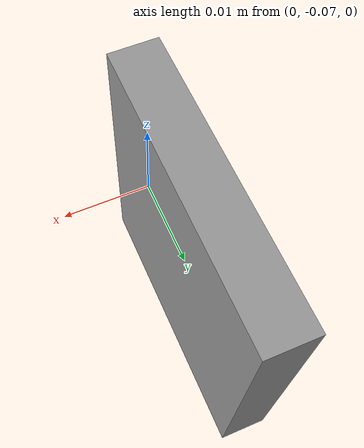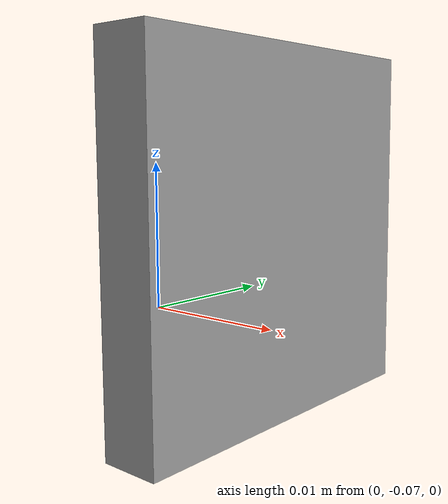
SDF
<?xml version='1.0'?>

<sdf version='1.6'>
  <model name='camera'>
    <link name='link_camera'>
      <inertial>
        <mass>0.0052875</mass>
        <inertia>
          <ixx>4.1e-07</ixx>
          <ixy>0</ixy>
          <ixz>0</ixz>
          <iyy>7.9e-07</iyy>
          <iyz>0</iyz>
          <izz>4.1e-07</izz>
        </inertia>
        <!-- centered around rgb-->
        <pose frame="">0 -0.058 0.004 3.14159 0 0</pose>
        <!-- centered -->
      </inertial>
      <pose frame="">0 -0.058 0.004 3.14159 0 0</pose>
      <gravity>1</gravity>
      <self_collide>0</self_collide>
      <kinematic>0</kinematic>
      <enable_wind>0</enable_wind>
      <visual name='visual'>
        <pose frame=''>0 0 0 0 -0 0</pose>
        <geometry>
          <box>
            <size>0.005 0.03 0.03</size>
          </box>
        </geometry>
        <material>
          <lighting>1</lighting>
          <script>
            <uri>file://media/materials/scripts/gazebo.material</uri>
            <name>Gazebo/Grey</name>
          </script>
          <shader type='vertex'>
            <normal_map>__default__</normal_map>
          </shader>
          <ambient>0.3 0.3 0.3 1</ambient>
          <diffuse>0.7 0.7 0.7 1</diffuse>
          <specular>0.01 0.01 0.01 1</specular>
          <emissive>0 0 0 1</emissive>
        </material>
        <transparency>0</transparency>
        <cast_shadows>1</cast_shadows>
      </visual>
      <collision name='collision'>
        <laser_retro>0</laser_retro>
        <max_contacts>10</max_contacts>
        <pose frame=''>0 0 0 0 -0 0</pose>
        <geometry>
          <box>
            <size>0.005 0.03 0.03</size>
          </box>
        </geometry>
        <surface>
          <friction>
            <ode>
              <mu>1</mu>
              <mu2>1</mu2>
              <fdir1>0 0 0</fdir1>
              <slip1>0</slip1>
              <slip2>0</slip2>
            </ode>
            <torsional>
              <coefficient>1</coefficient>
              <patch_radius>0</patch_radius>
              <surface_radius>0</surface_radius>
              <use_patch_radius>1</use_patch_radius>
              <ode>
                <slip>0</slip>
              </ode>
            </torsional>
          </friction>
          <bounce>
            <restitution_coefficient>0</restitution_coefficient>
            <threshold>1e+06</threshold>
          </bounce>
          <contact>
            <collide_without_contact>0</collide_without_contact>
            <collide_without_contact_bitmask>1</collide_without_contact_bitmask>
            <collide_bitmask>1</collide_bitmask>
            <ode>
              <soft_cfm>0</soft_cfm>
              <soft_erp>0.2</soft_erp>
              <kp>1e+13</kp>
              <kd>1</kd>
              <max_vel>0.01</max_vel>
              <min_depth>0</min_depth>
            </ode>
            <bullet>
              <split_impulse>1</split_impulse>
              <split_impulse_penetration_threshold>-0.01</split_impulse_penetration_threshold>
              <soft_cfm>0</soft_cfm>
              <soft_erp>0.2</soft_erp>
              <kp>1e+13</kp>
              <kd>1</kd>
            </bullet>
          </contact>
        </surface>
      </collision>

    <sensor name="imu_sensor" type="imu">
        <always_on>true</always_on>
        <update_rate>200</update_rate>
        <visualize>true</visualize>
        <topic>__default_topic__</topic>
        <plugin filename="libgazebo_ros_imu_sensor.so" name="imu_plugin">
          <robotNamespace/>
          <topicName>/camera/imu</topicName>
          <bodyName>imu_link</bodyName>
          <updateRateHZ>200.0</updateRateHZ>
          <gaussianNoise>0.0</gaussianNoise>
          <xyzOffset>0 0 0</xyzOffset>
          <rpyOffset>0 0 0</rpyOffset>
          <frameName>realsense</frameName>
          <initialOrientationAsReference>false</initialOrientationAsReference>
        </plugin>
      </sensor>
      <sensor name="color" type="camera">
        <pose frame="">0 -0.046 0.004 3.14159 0 0</pose>
        <camera name="__default__">
          <horizontal_fov>0.96976</horizontal_fov>
          <image>
            <width>640</width>
            <height>480</height>
            <format>RGB_INT8</format>
          </image>
          <clip>
            <near>0.1</near>
            <far>100</far>
          </clip>
          <noise>
            <type>gaussian</type>
            <mean>0.0</mean>
            <stddev>0.007</stddev>
          </noise>
        </camera>
        <always_on>1</always_on>
        <update_rate>30</update_rate>
        <visualize>1</visualize>
      </sensor>
      <sensor name="ired1" type="camera">
        <pose frame="">0 -0.06 0.004 3.14159 0 0</pose>
        <camera name="__default__">
          <horizontal_fov>1.047</horizontal_fov>
          <image>
            <width>640</width>
            <height>480</height>
            <format>L_INT8</format>
          </image>
          <clip>
            <near>0.1</near>
            <far>100</far>
          </clip>
          <noise>
            <type>gaussian</type>
            <mean>0.0</mean>
            <stddev>0.007</stddev>
          </noise>
        </camera>
        <always_on>1</always_on>
        <update_rate>30</update_rate>
        <visualize>0</visualize>
      </sensor>
      <sensor name="ired2" type="camera">
        <pose frame="">0 0.01 0.004 3.14159 0 0</pose>
        <camera name="__default__">
          <horizontal_fov>1.047</horizontal_fov>
          <image>
            <width>640</width>
            <height>480</height>
            <format>L_INT8</format>
          </image>
          <clip>
            <near>0.1</near>
            <far>100</far>
          </clip>
          <noise>
            <type>gaussian</type>
            <mean>0.0</mean>
            <stddev>0.007</stddev>
          </noise>
        </camera>
        <always_on>1</always_on>
        <update_rate>30</update_rate>
        <visualize>0</visualize>
      </sensor>
      <sensor name="depth" type="depth">
        <pose frame="">0 -0.03 0.004 3.14159 0 0</pose>
        <camera name="__default__">
          <horizontal_fov>1.047</horizontal_fov>
          <image>
            <width>640</width>
            <height>480</height>
          </image>
          <clip>
            <near>0.1</near>
            <far>100</far>
          </clip>
          <noise>
            <type>gaussian</type>
            <mean>0.0</mean>
            <stddev>0.007</stddev>
          </noise>
        </camera>
        <always_on>1</always_on>
        <update_rate>30</update_rate>
        <visualize>0</visualize>
      </sensor>
    </link>
    <plugin name="camera" filename="librealsense_gazebo_plugin.so">
        <depthUpdateRate>30.0</depthUpdateRate>
        <colorUpdateRate>30.0</colorUpdateRate>
        <infraredUpdateRate>30.0</infraredUpdateRate>
        <depthTopicName>depth/image_raw</depthTopicName>
        <depthCameraInfoTopicName>depth/camera_info</depthCameraInfoTopicName>
        <colorTopicName>color/image_raw</colorTopicName>
        <colorCameraInfoTopicName>color/camera_info</colorCameraInfoTopicName>
        <infrared1TopicName>infra1/image_raw</infrared1TopicName>
        <infrared1CameraInfoTopicName>infra1/camera_info</infrared1CameraInfoTopicName>
        <infrared2TopicName>infra2/image_raw</infrared2TopicName>
        <infrared2CameraInfoTopicName>infra2/camera_info</infrared2CameraInfoTopicName>
        <colorOpticalframeName>camera_color_optical_frame</colorOpticalframeName>
        <depthOpticalframeName>camera_depth_optical_frame</depthOpticalframeName>
        <infrared1OpticalframeName>camera_infrared1_optical_frame</infrared1OpticalframeName>
        <infrared2OpticalframeName>camera_infrared2_optical_frame</infrared2OpticalframeName>
        <rangeMinDepth>0.2</rangeMinDepth>
        <rangeMaxDepth>10.0</rangeMaxDepth>
        <pointCloud>true</pointCloud>
        <pointCloudTopicName>depth/color/points</pointCloudTopicName>
        <pointCloudCutoff>0.25</pointCloudCutoff>
        <pointCloudCutoffMax>9.0</pointCloudCutoffMax>
      </plugin>

  </model>
</sdf>
